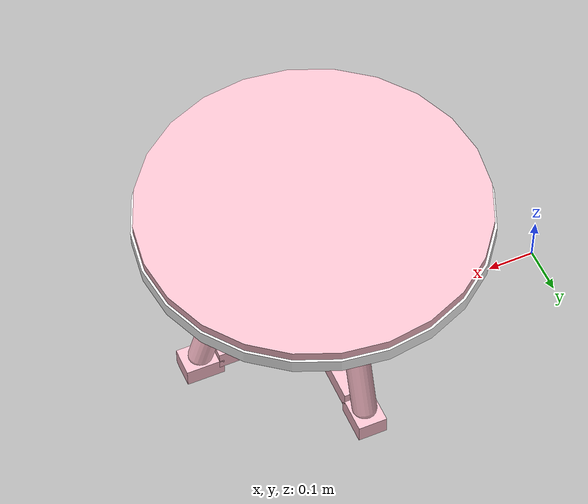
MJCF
<?xml version='1.0' encoding='utf-8'?>
<mujoco model="openarm_table">
  <asset>
    <material name="champagne_wood" rgba="1.0 0.75 0.8 1" specular="0.2" shininess="0.3"/>
    <material name="white_carving" rgba="1.0 1.0 1.0 1" specular="0.1" shininess="0.1"/>
  </asset>

  <worldbody>
    <body name="ornate_table" pos="0.5 0 0">
      <geom name="table_top" type="cylinder" size="0.35 0.02" pos="0 0 0.40"
            material="champagne_wood" contype="1" conaffinity="1"
            friction="0.05 0.01 0.01"/>
      <geom name="table_rim" type="cylinder" size="0.355 0.015" pos="0 0 0.385"
            material="white_carving"/>
      <geom name="base_cross_1" type="box" size="0.22 0.03 0.02" pos="0 0 0.06"
            material="champagne_wood"/>
      <geom name="base_cross_2" type="box" size="0.03 0.22 0.02" pos="0 0 0.06"
            material="champagne_wood"/>
      <geom name="center_knob" type="cylinder" size="0.04 0.05" pos="0 0 0.05"
            material="white_carving"/>

      <body name="leg_front">
        <geom type="capsule" fromto="0.25 0 0.06 0.20 0 0.22" size="0.025"
              material="champagne_wood"/>
        <geom type="capsule" fromto="0.20 0 0.22 0.30 0 0.38" size="0.035"
              material="champagne_wood"/>
        <geom type="sphere" pos="0.30 0 0.36" size="0.04" material="white_carving"/>
        <geom type="box" pos="0.25 0 0.04" size="0.04 0.03 0.02"
              material="champagne_wood"/>
      </body>

      <body name="leg_back">
        <geom type="capsule" fromto="-0.25 0 0.06 -0.20 0 0.22" size="0.025"
              material="champagne_wood"/>
        <geom type="capsule" fromto="-0.20 0 0.22 -0.30 0 0.38" size="0.035"
              material="champagne_wood"/>
        <geom type="sphere" pos="-0.30 0 0.36" size="0.04" material="white_carving"/>
        <geom type="box" pos="-0.25 0 0.04" size="0.04 0.03 0.02"
              material="champagne_wood"/>
      </body>

      <body name="leg_left">
        <geom type="capsule" fromto="0 0.25 0.06 0 0.20 0.22" size="0.025"
              material="champagne_wood"/>
        <geom type="capsule" fromto="0 0.20 0.22 0 0.30 0.38" size="0.035"
              material="champagne_wood"/>
        <geom type="sphere" pos="0 0.30 0.36" size="0.04" material="white_carving"/>
        <geom type="box" pos="0 0.25 0.04" size="0.03 0.04 0.02"
              material="champagne_wood"/>
      </body>

      <body name="leg_right">
        <geom type="capsule" fromto="0 -0.25 0.06 0 -0.20 0.22" size="0.025"
              material="champagne_wood"/>
        <geom type="capsule" fromto="0 -0.20 0.22 0 -0.30 0.38" size="0.035"
              material="champagne_wood"/>
        <geom type="sphere" pos="0 -0.30 0.36" size="0.04" material="white_carving"/>
        <geom type="box" pos="0 -0.25 0.04" size="0.03 0.04 0.02"
              material="champagne_wood"/>
      </body>
    </body>
  </worldbody>
</mujoco>
